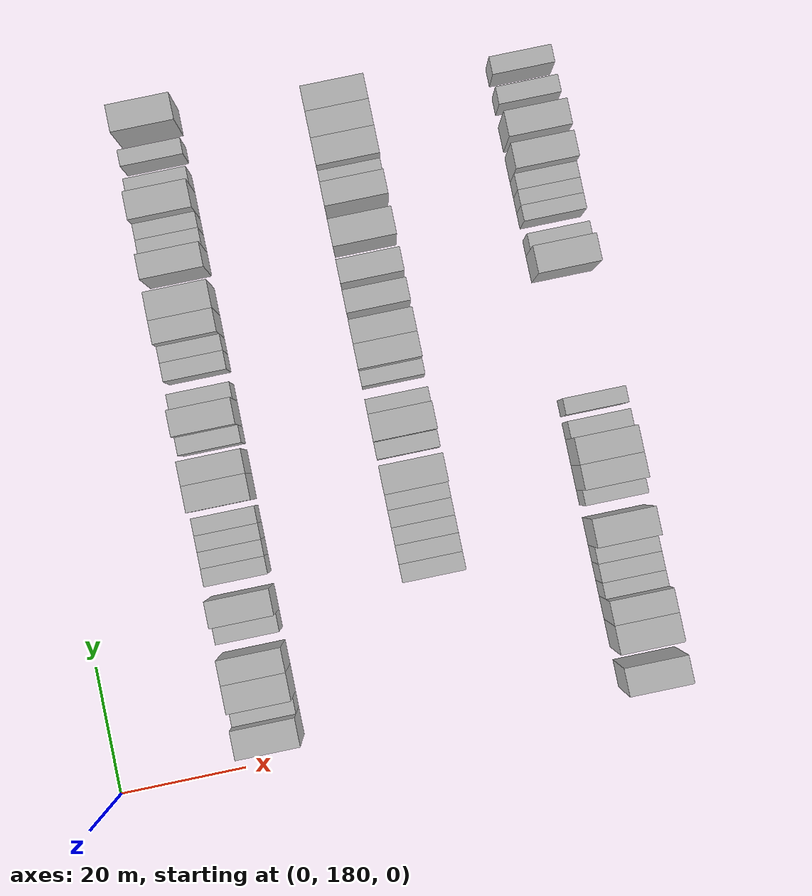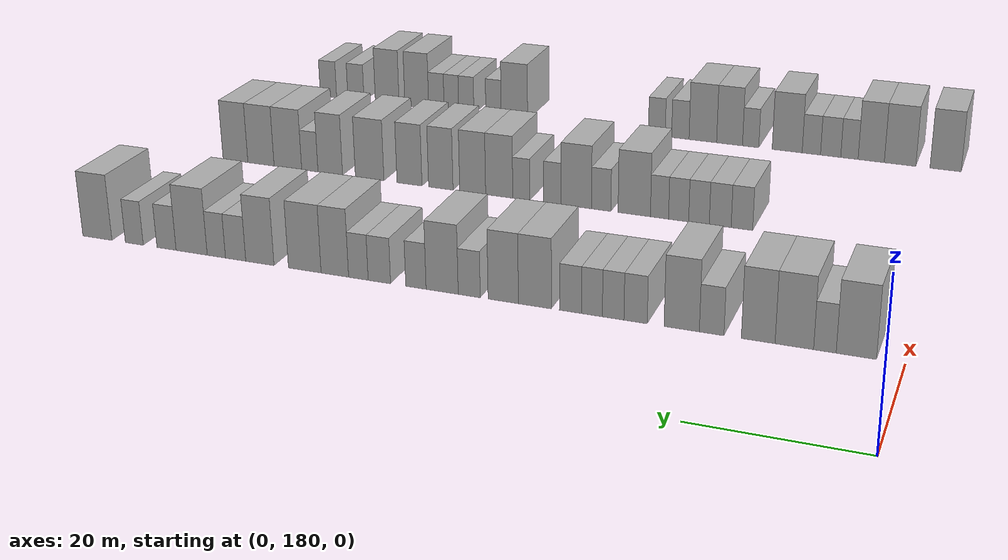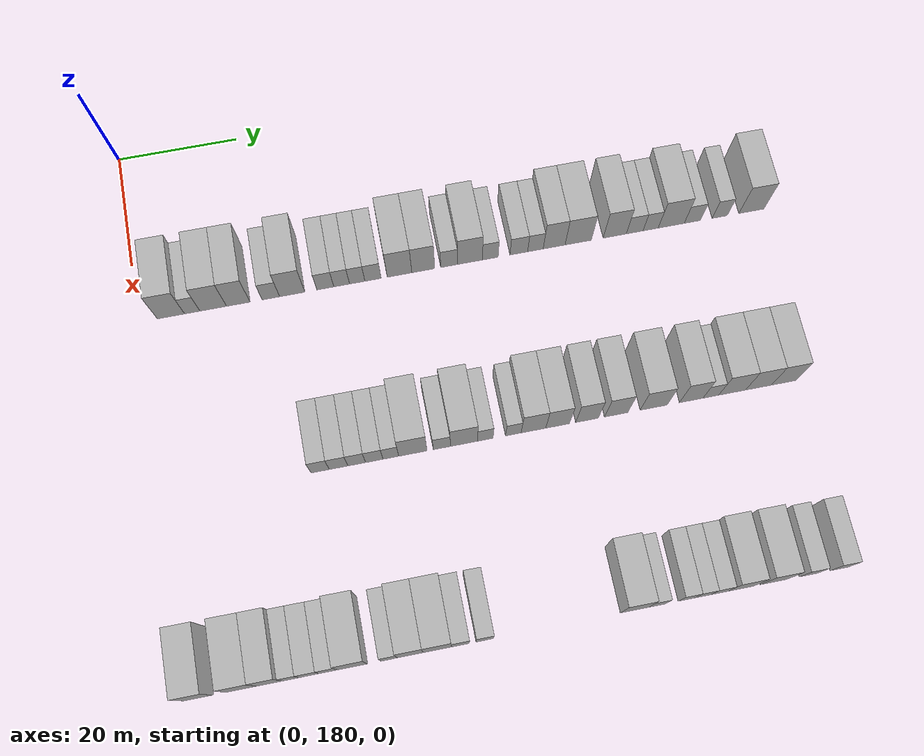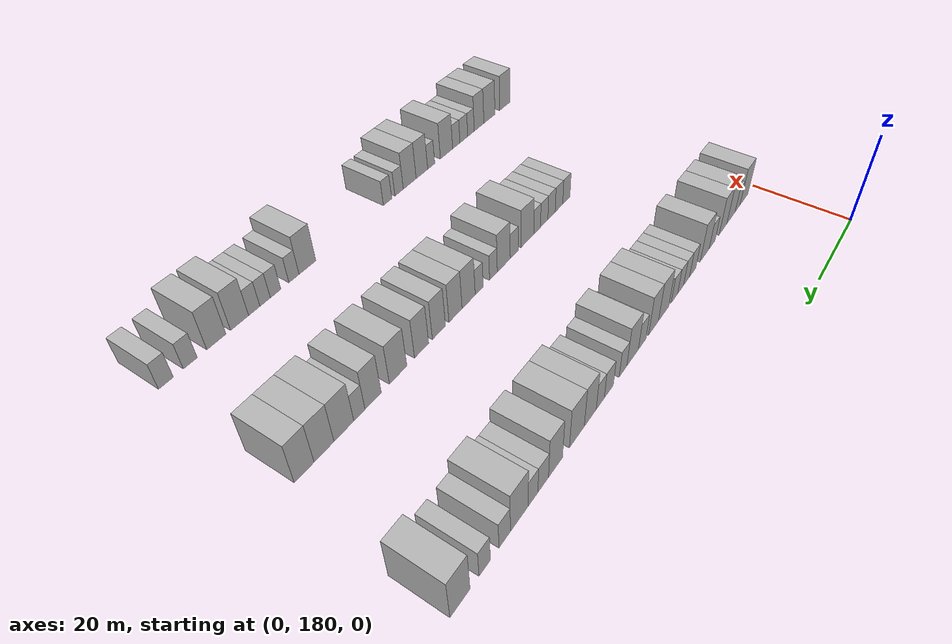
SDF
<sdf version="1.6">
 <world name="default">
  <model name="building_118">
   <static>1</static>
   <pose>25.0000 185.3868 0 0.000000 0.000000 0.000000</pose>
   <link name="link">
    <pose>0 0 4.50 0 0 0</pose>
    <collision name="collision"><geometry><box><size>10.0000 4.4420 9.0000</size></box></geometry></collision>
    <visual name="visual">
     <cast_shadows>0</cast_shadows>
     <geometry><box><size>10.0000 4.4420 9.0000</size></box></geometry>
     <material>
      <script>
       <uri>model://HANNAS_wall/materials/scripts</uri>
       <uri>model://HANNAS_wall/materials/textures</uri>
       <name>vrc/HANNAS_wall</name>
      </script>
     </material>
    </visual>
   </link>
  </model>
  <model name="building_119">
   <static>1</static>
   <pose>25.0000 188.8641 0 0.000000 0.000000 0.000000</pose>
   <link name="link">
    <pose>0 0 3.00 0 0 0</pose>
    <collision name="collision"><geometry><box><size>10.0000 2.5125 6.0000</size></box></geometry></collision>
    <visual name="visual">
     <cast_shadows>0</cast_shadows>
     <geometry><box><size>10.0000 2.5125 6.0000</size></box></geometry>
     <material>
      <script>
       <uri>model://HANNAS_wall/materials/scripts</uri>
       <uri>model://HANNAS_wall/materials/textures</uri>
       <name>vrc/HANNAS_wall</name>
      </script>
     </material>
    </visual>
   </link>
  </model>
  <model name="building_120">
   <static>1</static>
   <pose>25.0000 192.2899 0 0.000000 0.000000 0.000000</pose>
   <link name="link">
    <pose>0 0 4.50 0 0 0</pose>
    <collision name="collision"><geometry><box><size>10.0000 4.3392 9.0000</size></box></geometry></collision>
    <visual name="visual">
     <cast_shadows>0</cast_shadows>
     <geometry><box><size>10.0000 4.3392 9.0000</size></box></geometry>
     <material>
      <script>
       <uri>model://HANNAS_wall/materials/scripts</uri>
       <uri>model://HANNAS_wall/materials/textures</uri>
       <name>vrc/HANNAS_wall</name>
      </script>
     </material>
    </visual>
   </link>
  </model>
  <model name="building_121">
   <static>1</static>
   <pose>25.0000 196.3883 0 0.000000 0.000000 0.000000</pose>
   <link name="link">
    <pose>0 0 4.50 0 0 0</pose>
    <collision name="collision"><geometry><box><size>10.0000 3.8577 9.0000</size></box></geometry></collision>
    <visual name="visual">
     <cast_shadows>0</cast_shadows>
     <geometry><box><size>10.0000 3.8577 9.0000</size></box></geometry>
     <material>
      <script>
       <uri>model://HANNAS_wall/materials/scripts</uri>
       <uri>model://HANNAS_wall/materials/textures</uri>
       <name>vrc/HANNAS_wall</name>
      </script>
     </material>
    </visual>
   </link>
  </model>
  <model name="building_122">
   <static>1</static>
   <pose>25.0000 201.7497 0 0.000000 0.000000 0.000000</pose>
   <link name="link">
    <pose>0 0 3.00 0 0 0</pose>
    <collision name="collision"><geometry><box><size>10.0000 2.8650 6.0000</size></box></geometry></collision>
    <visual name="visual">
     <cast_shadows>0</cast_shadows>
     <geometry><box><size>10.0000 2.8650 6.0000</size></box></geometry>
     <material>
      <script>
       <uri>model://HANNAS_wall/materials/scripts</uri>
       <uri>model://HANNAS_wall/materials/textures</uri>
       <name>vrc/HANNAS_wall</name>
      </script>
     </material>
    </visual>
   </link>
  </model>
  <model name="building_123">
   <static>1</static>
   <pose>25.0000 205.2552 0 0.000000 0.000000 0.000000</pose>
   <link name="link">
    <pose>0 0 4.50 0 0 0</pose>
    <collision name="collision"><geometry><box><size>10.0000 4.1461 9.0000</size></box></geometry></collision>
    <visual name="visual">
     <cast_shadows>0</cast_shadows>
     <geometry><box><size>10.0000 4.1461 9.0000</size></box></geometry>
     <material>
      <script>
       <uri>model://HANNAS_wall/materials/scripts</uri>
       <uri>model://HANNAS_wall/materials/textures</uri>
       <name>vrc/HANNAS_wall</name>
      </script>
     </material>
    </visual>
   </link>
  </model>
  <model name="building_124">
   <static>1</static>
   <pose>25.0000 210.7235 0 0.000000 0.000000 0.000000</pose>
   <link name="link">
    <pose>0 0 3.00 0 0 0</pose>
    <collision name="collision"><geometry><box><size>10.0000 2.7904 6.0000</size></box></geometry></collision>
    <visual name="visual">
     <cast_shadows>0</cast_shadows>
     <geometry><box><size>10.0000 2.7904 6.0000</size></box></geometry>
     <material>
      <script>
       <uri>model://HANNAS_wall/materials/scripts</uri>
       <uri>model://HANNAS_wall/materials/textures</uri>
       <name>vrc/HANNAS_wall</name>
      </script>
     </material>
    </visual>
   </link>
  </model>
  <model name="building_125">
   <static>1</static>
   <pose>25.0000 213.4216 0 0.000000 0.000000 0.000000</pose>
   <link name="link">
    <pose>0 0 3.00 0 0 0</pose>
    <collision name="collision"><geometry><box><size>10.0000 2.6058 6.0000</size></box></geometry></collision>
    <visual name="visual">
     <cast_shadows>0</cast_shadows>
     <geometry><box><size>10.0000 2.6058 6.0000</size></box></geometry>
     <material>
      <script>
       <uri>model://HANNAS_wall/materials/scripts</uri>
       <uri>model://HANNAS_wall/materials/textures</uri>
       <name>vrc/HANNAS_wall</name>
      </script>
     </material>
    </visual>
   </link>
  </model>
  <model name="building_126">
   <static>1</static>
   <pose>25.0000 215.9973 0 0.000000 0.000000 0.000000</pose>
   <link name="link">
    <pose>0 0 3.00 0 0 0</pose>
    <collision name="collision"><geometry><box><size>10.0000 2.5456 6.0000</size></box></geometry></collision>
    <visual name="visual">
     <cast_shadows>0</cast_shadows>
     <geometry><box><size>10.0000 2.5456 6.0000</size></box></geometry>
     <material>
      <script>
       <uri>model://HANNAS_wall/materials/scripts</uri>
       <uri>model://HANNAS_wall/materials/textures</uri>
       <name>vrc/HANNAS_wall</name>
      </script>
     </material>
    </visual>
   </link>
  </model>
  <model name="building_127">
   <static>1</static>
   <pose>25.0000 218.6260 0 0.000000 0.000000 0.000000</pose>
   <link name="link">
    <pose>0 0 3.00 0 0 0</pose>
    <collision name="collision"><geometry><box><size>10.0000 2.7118 6.0000</size></box></geometry></collision>
    <visual name="visual">
     <cast_shadows>0</cast_shadows>
     <geometry><box><size>10.0000 2.7118 6.0000</size></box></geometry>
     <material>
      <script>
       <uri>model://HANNAS_wall/materials/scripts</uri>
       <uri>model://HANNAS_wall/materials/textures</uri>
       <name>vrc/HANNAS_wall</name>
      </script>
     </material>
    </visual>
   </link>
  </model>
  <model name="building_128">
   <static>1</static>
   <pose>25.0000 223.0358 0 0.000000 0.000000 0.000000</pose>
   <link name="link">
    <pose>0 0 4.50 0 0 0</pose>
    <collision name="collision"><geometry><box><size>10.0000 4.1078 9.0000</size></box></geometry></collision>
    <visual name="visual">
     <cast_shadows>0</cast_shadows>
     <geometry><box><size>10.0000 4.1078 9.0000</size></box></geometry>
     <material>
      <script>
       <uri>model://HANNAS_wall/materials/scripts</uri>
       <uri>model://HANNAS_wall/materials/textures</uri>
       <name>vrc/HANNAS_wall</name>
      </script>
     </material>
    </visual>
   </link>
  </model>
  <model name="building_129">
   <static>1</static>
   <pose>25.0000 227.0014 0 0.000000 0.000000 0.000000</pose>
   <link name="link">
    <pose>0 0 4.50 0 0 0</pose>
    <collision name="collision"><geometry><box><size>10.0000 3.8233 9.0000</size></box></geometry></collision>
    <visual name="visual">
     <cast_shadows>0</cast_shadows>
     <geometry><box><size>10.0000 3.8233 9.0000</size></box></geometry>
     <material>
      <script>
       <uri>model://HANNAS_wall/materials/scripts</uri>
       <uri>model://HANNAS_wall/materials/textures</uri>
       <name>vrc/HANNAS_wall</name>
      </script>
     </material>
    </visual>
   </link>
  </model>
  <model name="building_130">
   <static>1</static>
   <pose>25.0000 231.3217 0 0.000000 0.000000 0.000000</pose>
   <link name="link">
    <pose>0 0 3.00 0 0 0</pose>
    <collision name="collision"><geometry><box><size>10.0000 2.8173 6.0000</size></box></geometry></collision>
    <visual name="visual">
     <cast_shadows>0</cast_shadows>
     <geometry><box><size>10.0000 2.8173 6.0000</size></box></geometry>
     <material>
      <script>
       <uri>model://HANNAS_wall/materials/scripts</uri>
       <uri>model://HANNAS_wall/materials/textures</uri>
       <name>vrc/HANNAS_wall</name>
      </script>
     </material>
    </visual>
   </link>
  </model>
  <model name="building_131">
   <static>1</static>
   <pose>25.0000 234.8103 0 0.000000 0.000000 0.000000</pose>
   <link name="link">
    <pose>0 0 4.50 0 0 0</pose>
    <collision name="collision"><geometry><box><size>10.0000 4.1599 9.0000</size></box></geometry></collision>
    <visual name="visual">
     <cast_shadows>0</cast_shadows>
     <geometry><box><size>10.0000 4.1599 9.0000</size></box></geometry>
     <material>
      <script>
       <uri>model://HANNAS_wall/materials/scripts</uri>
       <uri>model://HANNAS_wall/materials/textures</uri>
       <name>vrc/HANNAS_wall</name>
      </script>
     </material>
    </visual>
   </link>
  </model>
  <model name="building_132">
   <static>1</static>
   <pose>25.0000 238.2205 0 0.000000 0.000000 0.000000</pose>
   <link name="link">
    <pose>0 0 3.00 0 0 0</pose>
    <collision name="collision"><geometry><box><size>10.0000 2.6606 6.0000</size></box></geometry></collision>
    <visual name="visual">
     <cast_shadows>0</cast_shadows>
     <geometry><box><size>10.0000 2.6606 6.0000</size></box></geometry>
     <material>
      <script>
       <uri>model://HANNAS_wall/materials/scripts</uri>
       <uri>model://HANNAS_wall/materials/textures</uri>
       <name>vrc/HANNAS_wall</name>
      </script>
     </material>
    </visual>
   </link>
  </model>
  <model name="building_133">
   <static>1</static>
   <pose>25.0000 243.0415 0 0.000000 0.000000 0.000000</pose>
   <link name="link">
    <pose>0 0 3.00 0 0 0</pose>
    <collision name="collision"><geometry><box><size>10.0000 2.9813 6.0000</size></box></geometry></collision>
    <visual name="visual">
     <cast_shadows>0</cast_shadows>
     <geometry><box><size>10.0000 2.9813 6.0000</size></box></geometry>
     <material>
      <script>
       <uri>model://HANNAS_wall/materials/scripts</uri>
       <uri>model://HANNAS_wall/materials/textures</uri>
       <name>vrc/HANNAS_wall</name>
      </script>
     </material>
    </visual>
   </link>
  </model>
  <model name="building_134">
   <static>1</static>
   <pose>25.0000 245.8419 0 0.000000 0.000000 0.000000</pose>
   <link name="link">
    <pose>0 0 3.00 0 0 0</pose>
    <collision name="collision"><geometry><box><size>10.0000 2.6196 6.0000</size></box></geometry></collision>
    <visual name="visual">
     <cast_shadows>0</cast_shadows>
     <geometry><box><size>10.0000 2.6196 6.0000</size></box></geometry>
     <material>
      <script>
       <uri>model://HANNAS_wall/materials/scripts</uri>
       <uri>model://HANNAS_wall/materials/textures</uri>
       <name>vrc/HANNAS_wall</name>
      </script>
     </material>
    </visual>
   </link>
  </model>
  <model name="building_135">
   <static>1</static>
   <pose>25.0000 249.0126 0 0.000000 0.000000 0.000000</pose>
   <link name="link">
    <pose>0 0 4.50 0 0 0</pose>
    <collision name="collision"><geometry><box><size>10.0000 3.7219 9.0000</size></box></geometry></collision>
    <visual name="visual">
     <cast_shadows>0</cast_shadows>
     <geometry><box><size>10.0000 3.7219 9.0000</size></box></geometry>
     <material>
      <script>
       <uri>model://HANNAS_wall/materials/scripts</uri>
       <uri>model://HANNAS_wall/materials/textures</uri>
       <name>vrc/HANNAS_wall</name>
      </script>
     </material>
    </visual>
   </link>
  </model>
  <model name="building_136">
   <static>1</static>
   <pose>25.0000 253.1084 0 0.000000 0.000000 0.000000</pose>
   <link name="link">
    <pose>0 0 4.50 0 0 0</pose>
    <collision name="collision"><geometry><box><size>10.0000 4.4697 9.0000</size></box></geometry></collision>
    <visual name="visual">
     <cast_shadows>0</cast_shadows>
     <geometry><box><size>10.0000 4.4697 9.0000</size></box></geometry>
     <material>
      <script>
       <uri>model://HANNAS_wall/materials/scripts</uri>
       <uri>model://HANNAS_wall/materials/textures</uri>
       <name>vrc/HANNAS_wall</name>
      </script>
     </material>
    </visual>
   </link>
  </model>
  <model name="building_137">
   <static>1</static>
   <pose>25.0000 259.3169 0 0.000000 0.000000 0.000000</pose>
   <link name="link">
    <pose>0 0 4.50 0 0 0</pose>
    <collision name="collision"><geometry><box><size>10.0000 3.9473 9.0000</size></box></geometry></collision>
    <visual name="visual">
     <cast_shadows>0</cast_shadows>
     <geometry><box><size>10.0000 3.9473 9.0000</size></box></geometry>
     <material>
      <script>
       <uri>model://HANNAS_wall/materials/scripts</uri>
       <uri>model://HANNAS_wall/materials/textures</uri>
       <name>vrc/HANNAS_wall</name>
      </script>
     </material>
    </visual>
   </link>
  </model>
  <model name="building_138">
   <static>1</static>
   <pose>25.0000 262.7218 0 0.000000 0.000000 0.000000</pose>
   <link name="link">
    <pose>0 0 3.00 0 0 0</pose>
    <collision name="collision"><geometry><box><size>10.0000 2.8626 6.0000</size></box></geometry></collision>
    <visual name="visual">
     <cast_shadows>0</cast_shadows>
     <geometry><box><size>10.0000 2.8626 6.0000</size></box></geometry>
     <material>
      <script>
       <uri>model://HANNAS_wall/materials/scripts</uri>
       <uri>model://HANNAS_wall/materials/textures</uri>
       <name>vrc/HANNAS_wall</name>
      </script>
     </material>
    </visual>
   </link>
  </model>
  <model name="building_139">
   <static>1</static>
   <pose>25.0000 265.4509 0 0.000000 0.000000 0.000000</pose>
   <link name="link">
    <pose>0 0 3.00 0 0 0</pose>
    <collision name="collision"><geometry><box><size>10.0000 2.5955 6.0000</size></box></geometry></collision>
    <visual name="visual">
     <cast_shadows>0</cast_shadows>
     <geometry><box><size>10.0000 2.5955 6.0000</size></box></geometry>
     <material>
      <script>
       <uri>model://HANNAS_wall/materials/scripts</uri>
       <uri>model://HANNAS_wall/materials/textures</uri>
       <name>vrc/HANNAS_wall</name>
      </script>
     </material>
    </visual>
   </link>
  </model>
  <model name="building_140">
   <static>1</static>
   <pose>25.0000 268.9870 0 0.000000 0.000000 0.000000</pose>
   <link name="link">
    <pose>0 0 4.50 0 0 0</pose>
    <collision name="collision"><geometry><box><size>10.0000 4.4767 9.0000</size></box></geometry></collision>
    <visual name="visual">
     <cast_shadows>0</cast_shadows>
     <geometry><box><size>10.0000 4.4767 9.0000</size></box></geometry>
     <material>
      <script>
       <uri>model://HANNAS_wall/materials/scripts</uri>
       <uri>model://HANNAS_wall/materials/textures</uri>
       <name>vrc/HANNAS_wall</name>
      </script>
     </material>
    </visual>
   </link>
  </model>
  <model name="building_141">
   <static>1</static>
   <pose>25.0000 272.6194 0 0.000000 0.000000 0.000000</pose>
   <link name="link">
    <pose>0 0 3.00 0 0 0</pose>
    <collision name="collision"><geometry><box><size>10.0000 2.7882 6.0000</size></box></geometry></collision>
    <visual name="visual">
     <cast_shadows>0</cast_shadows>
     <geometry><box><size>10.0000 2.7882 6.0000</size></box></geometry>
     <material>
      <script>
       <uri>model://HANNAS_wall/materials/scripts</uri>
       <uri>model://HANNAS_wall/materials/textures</uri>
       <name>vrc/HANNAS_wall</name>
      </script>
     </material>
    </visual>
   </link>
  </model>
  <model name="building_142">
   <static>1</static>
   <pose>25.0000 277.3292 0 0.000000 0.000000 0.000000</pose>
   <link name="link">
    <pose>0 0 3.00 0 0 0</pose>
    <collision name="collision"><geometry><box><size>10.0000 2.6312 6.0000</size></box></geometry></collision>
    <visual name="visual">
     <cast_shadows>0</cast_shadows>
     <geometry><box><size>10.0000 2.6312 6.0000</size></box></geometry>
     <material>
      <script>
       <uri>model://HANNAS_wall/materials/scripts</uri>
       <uri>model://HANNAS_wall/materials/textures</uri>
       <name>vrc/HANNAS_wall</name>
      </script>
     </material>
    </visual>
   </link>
  </model>
  <model name="building_143">
   <static>1</static>
   <pose>25.0000 282.8171 0 0.000000 0.000000 0.000000</pose>
   <link name="link">
    <pose>0 0 4.50 0 0 0</pose>
    <collision name="collision"><geometry><box><size>10.0000 4.3447 9.0000</size></box></geometry></collision>
    <visual name="visual">
     <cast_shadows>0</cast_shadows>
     <geometry><box><size>10.0000 4.3447 9.0000</size></box></geometry>
     <material>
      <script>
       <uri>model://HANNAS_wall/materials/scripts</uri>
       <uri>model://HANNAS_wall/materials/textures</uri>
       <name>vrc/HANNAS_wall</name>
      </script>
     </material>
    </visual>
   </link>
  </model>
  <model name="building_252">
   <static>1</static>
   <pose>55.0000 205.1784 0 0.000000 0.000000 0.000000</pose>
   <link name="link">
    <pose>0 0 3.00 0 0 0</pose>
    <collision name="collision"><geometry><box><size>10.0000 2.8641 6.0000</size></box></geometry></collision>
    <visual name="visual">
     <cast_shadows>0</cast_shadows>
     <geometry><box><size>10.0000 2.8641 6.0000</size></box></geometry>
     <material>
      <script>
       <uri>model://HANNAS_wall/materials/scripts</uri>
       <uri>model://HANNAS_wall/materials/textures</uri>
       <name>vrc/HANNAS_wall</name>
      </script>
     </material>
    </visual>
   </link>
  </model>
  <model name="building_253">
   <static>1</static>
   <pose>55.0000 208.0763 0 0.000000 0.000000 0.000000</pose>
   <link name="link">
    <pose>0 0 3.00 0 0 0</pose>
    <collision name="collision"><geometry><box><size>10.0000 2.9316 6.0000</size></box></geometry></collision>
    <visual name="visual">
     <cast_shadows>0</cast_shadows>
     <geometry><box><size>10.0000 2.9316 6.0000</size></box></geometry>
     <material>
      <script>
       <uri>model://HANNAS_wall/materials/scripts</uri>
       <uri>model://HANNAS_wall/materials/textures</uri>
       <name>vrc/HANNAS_wall</name>
      </script>
     </material>
    </visual>
   </link>
  </model>
  <model name="building_254">
   <static>1</static>
   <pose>55.0000 210.9330 0 0.000000 0.000000 0.000000</pose>
   <link name="link">
    <pose>0 0 3.00 0 0 0</pose>
    <collision name="collision"><geometry><box><size>10.0000 2.7818 6.0000</size></box></geometry></collision>
    <visual name="visual">
     <cast_shadows>0</cast_shadows>
     <geometry><box><size>10.0000 2.7818 6.0000</size></box></geometry>
     <material>
      <script>
       <uri>model://HANNAS_wall/materials/scripts</uri>
       <uri>model://HANNAS_wall/materials/textures</uri>
       <name>vrc/HANNAS_wall</name>
      </script>
     </material>
    </visual>
   </link>
  </model>
  <model name="building_255">
   <static>1</static>
   <pose>55.0000 213.6945 0 0.000000 0.000000 0.000000</pose>
   <link name="link">
    <pose>0 0 3.00 0 0 0</pose>
    <collision name="collision"><geometry><box><size>10.0000 2.7412 6.0000</size></box></geometry></collision>
    <visual name="visual">
     <cast_shadows>0</cast_shadows>
     <geometry><box><size>10.0000 2.7412 6.0000</size></box></geometry>
     <material>
      <script>
       <uri>model://HANNAS_wall/materials/scripts</uri>
       <uri>model://HANNAS_wall/materials/textures</uri>
       <name>vrc/HANNAS_wall</name>
      </script>
     </material>
    </visual>
   </link>
  </model>
  <model name="building_256">
   <static>1</static>
   <pose>55.0000 216.3075 0 0.000000 0.000000 0.000000</pose>
   <link name="link">
    <pose>0 0 3.00 0 0 0</pose>
    <collision name="collision"><geometry><box><size>10.0000 2.4850 6.0000</size></box></geometry></collision>
    <visual name="visual">
     <cast_shadows>0</cast_shadows>
     <geometry><box><size>10.0000 2.4850 6.0000</size></box></geometry>
     <material>
      <script>
       <uri>model://HANNAS_wall/materials/scripts</uri>
       <uri>model://HANNAS_wall/materials/textures</uri>
       <name>vrc/HANNAS_wall</name>
      </script>
     </material>
    </visual>
   </link>
  </model>
  <model name="building_257">
   <static>1</static>
   <pose>55.0000 219.7925 0 0.000000 0.000000 0.000000</pose>
   <link name="link">
    <pose>0 0 4.50 0 0 0</pose>
    <collision name="collision"><geometry><box><size>10.0000 4.4850 9.0000</size></box></geometry></collision>
    <visual name="visual">
     <cast_shadows>0</cast_shadows>
     <geometry><box><size>10.0000 4.4850 9.0000</size></box></geometry>
     <material>
      <script>
       <uri>model://HANNAS_wall/materials/scripts</uri>
       <uri>model://HANNAS_wall/materials/textures</uri>
       <name>vrc/HANNAS_wall</name>
      </script>
     </material>
    </visual>
   </link>
  </model>
  <model name="building_258">
   <static>1</static>
   <pose>55.0000 224.3978 0 0.000000 0.000000 0.000000</pose>
   <link name="link">
    <pose>0 0 3.00 0 0 0</pose>
    <collision name="collision"><geometry><box><size>10.0000 2.7257 6.0000</size></box></geometry></collision>
    <visual name="visual">
     <cast_shadows>0</cast_shadows>
     <geometry><box><size>10.0000 2.7257 6.0000</size></box></geometry>
     <material>
      <script>
       <uri>model://HANNAS_wall/materials/scripts</uri>
       <uri>model://HANNAS_wall/materials/textures</uri>
       <name>vrc/HANNAS_wall</name>
      </script>
     </material>
    </visual>
   </link>
  </model>
  <model name="building_259">
   <static>1</static>
   <pose>55.0000 227.9135 0 0.000000 0.000000 0.000000</pose>
   <link name="link">
    <pose>0 0 4.50 0 0 0</pose>
    <collision name="collision"><geometry><box><size>10.0000 4.3057 9.0000</size></box></geometry></collision>
    <visual name="visual">
     <cast_shadows>0</cast_shadows>
     <geometry><box><size>10.0000 4.3057 9.0000</size></box></geometry>
     <material>
      <script>
       <uri>model://HANNAS_wall/materials/scripts</uri>
       <uri>model://HANNAS_wall/materials/textures</uri>
       <name>vrc/HANNAS_wall</name>
      </script>
     </material>
    </visual>
   </link>
  </model>
  <model name="building_260">
   <static>1</static>
   <pose>55.0000 231.3106 0 0.000000 0.000000 0.000000</pose>
   <link name="link">
    <pose>0 0 3.00 0 0 0</pose>
    <collision name="collision"><geometry><box><size>10.0000 2.4886 6.0000</size></box></geometry></collision>
    <visual name="visual">
     <cast_shadows>0</cast_shadows>
     <geometry><box><size>10.0000 2.4886 6.0000</size></box></geometry>
     <material>
      <script>
       <uri>model://HANNAS_wall/materials/scripts</uri>
       <uri>model://HANNAS_wall/materials/textures</uri>
       <name>vrc/HANNAS_wall</name>
      </script>
     </material>
    </visual>
   </link>
  </model>
  <model name="building_261">
   <static>1</static>
   <pose>55.0000 235.7949 0 0.000000 0.000000 0.000000</pose>
   <link name="link">
    <pose>0 0 3.00 0 0 0</pose>
    <collision name="collision"><geometry><box><size>10.0000 2.4800 6.0000</size></box></geometry></collision>
    <visual name="visual">
     <cast_shadows>0</cast_shadows>
     <geometry><box><size>10.0000 2.4800 6.0000</size></box></geometry>
     <material>
      <script>
       <uri>model://HANNAS_wall/materials/scripts</uri>
       <uri>model://HANNAS_wall/materials/textures</uri>
       <name>vrc/HANNAS_wall</name>
      </script>
     </material>
    </visual>
   </link>
  </model>
  <model name="building_262">
   <static>1</static>
   <pose>55.0000 239.0174 0 0.000000 0.000000 0.000000</pose>
   <link name="link">
    <pose>0 0 4.50 0 0 0</pose>
    <collision name="collision"><geometry><box><size>10.0000 3.9650 9.0000</size></box></geometry></collision>
    <visual name="visual">
     <cast_shadows>0</cast_shadows>
     <geometry><box><size>10.0000 3.9650 9.0000</size></box></geometry>
     <material>
      <script>
       <uri>model://HANNAS_wall/materials/scripts</uri>
       <uri>model://HANNAS_wall/materials/textures</uri>
       <name>vrc/HANNAS_wall</name>
      </script>
     </material>
    </visual>
   </link>
  </model>
  <model name="building_263">
   <static>1</static>
   <pose>55.0000 242.9119 0 0.000000 0.000000 0.000000</pose>
   <link name="link">
    <pose>0 0 4.50 0 0 0</pose>
    <collision name="collision"><geometry><box><size>10.0000 3.8240 9.0000</size></box></geometry></collision>
    <visual name="visual">
     <cast_shadows>0</cast_shadows>
     <geometry><box><size>10.0000 3.8240 9.0000</size></box></geometry>
     <material>
      <script>
       <uri>model://HANNAS_wall/materials/scripts</uri>
       <uri>model://HANNAS_wall/materials/textures</uri>
       <name>vrc/HANNAS_wall</name>
      </script>
     </material>
    </visual>
   </link>
  </model>
  <model name="building_264">
   <static>1</static>
   <pose>55.0000 247.6518 0 0.000000 0.000000 0.000000</pose>
   <link name="link">
    <pose>0 0 4.50 0 0 0</pose>
    <collision name="collision"><geometry><box><size>10.0000 3.6558 9.0000</size></box></geometry></collision>
    <visual name="visual">
     <cast_shadows>0</cast_shadows>
     <geometry><box><size>10.0000 3.6558 9.0000</size></box></geometry>
     <material>
      <script>
       <uri>model://HANNAS_wall/materials/scripts</uri>
       <uri>model://HANNAS_wall/materials/textures</uri>
       <name>vrc/HANNAS_wall</name>
      </script>
     </material>
    </visual>
   </link>
  </model>
  <model name="building_265">
   <static>1</static>
   <pose>55.0000 252.3745 0 0.000000 0.000000 0.000000</pose>
   <link name="link">
    <pose>0 0 4.50 0 0 0</pose>
    <collision name="collision"><geometry><box><size>10.0000 3.7895 9.0000</size></box></geometry></collision>
    <visual name="visual">
     <cast_shadows>0</cast_shadows>
     <geometry><box><size>10.0000 3.7895 9.0000</size></box></geometry>
     <material>
      <script>
       <uri>model://HANNAS_wall/materials/scripts</uri>
       <uri>model://HANNAS_wall/materials/textures</uri>
       <name>vrc/HANNAS_wall</name>
      </script>
     </material>
    </visual>
   </link>
  </model>
  <model name="building_266">
   <static>1</static>
   <pose>55.0000 258.4699 0 0.000000 0.000000 0.000000</pose>
   <link name="link">
    <pose>0 0 4.50 0 0 0</pose>
    <collision name="collision"><geometry><box><size>10.0000 4.4014 9.0000</size></box></geometry></collision>
    <visual name="visual">
     <cast_shadows>0</cast_shadows>
     <geometry><box><size>10.0000 4.4014 9.0000</size></box></geometry>
     <material>
      <script>
       <uri>model://HANNAS_wall/materials/scripts</uri>
       <uri>model://HANNAS_wall/materials/textures</uri>
       <name>vrc/HANNAS_wall</name>
      </script>
     </material>
    </visual>
   </link>
  </model>
  <model name="building_267">
   <static>1</static>
   <pose>55.0000 264.5985 0 0.000000 0.000000 0.000000</pose>
   <link name="link">
    <pose>0 0 4.50 0 0 0</pose>
    <collision name="collision"><geometry><box><size>10.0000 3.8558 9.0000</size></box></geometry></collision>
    <visual name="visual">
     <cast_shadows>0</cast_shadows>
     <geometry><box><size>10.0000 3.8558 9.0000</size></box></geometry>
     <material>
      <script>
       <uri>model://HANNAS_wall/materials/scripts</uri>
       <uri>model://HANNAS_wall/materials/textures</uri>
       <name>vrc/HANNAS_wall</name>
      </script>
     </material>
    </visual>
   </link>
  </model>
  <model name="building_268">
   <static>1</static>
   <pose>55.0000 267.8153 0 0.000000 0.000000 0.000000</pose>
   <link name="link">
    <pose>0 0 3.00 0 0 0</pose>
    <collision name="collision"><geometry><box><size>10.0000 2.5777 6.0000</size></box></geometry></collision>
    <visual name="visual">
     <cast_shadows>0</cast_shadows>
     <geometry><box><size>10.0000 2.5777 6.0000</size></box></geometry>
     <material>
      <script>
       <uri>model://HANNAS_wall/materials/scripts</uri>
       <uri>model://HANNAS_wall/materials/textures</uri>
       <name>vrc/HANNAS_wall</name>
      </script>
     </material>
    </visual>
   </link>
  </model>
  <model name="building_269">
   <static>1</static>
   <pose>55.0000 271.3072 0 0.000000 0.000000 0.000000</pose>
   <link name="link">
    <pose>0 0 4.50 0 0 0</pose>
    <collision name="collision"><geometry><box><size>10.0000 4.4061 9.0000</size></box></geometry></collision>
    <visual name="visual">
     <cast_shadows>0</cast_shadows>
     <geometry><box><size>10.0000 4.4061 9.0000</size></box></geometry>
     <material>
      <script>
       <uri>model://HANNAS_wall/materials/scripts</uri>
       <uri>model://HANNAS_wall/materials/textures</uri>
       <name>vrc/HANNAS_wall</name>
      </script>
     </material>
    </visual>
   </link>
  </model>
  <model name="building_270">
   <static>1</static>
   <pose>55.0000 275.6243 0 0.000000 0.000000 0.000000</pose>
   <link name="link">
    <pose>0 0 4.50 0 0 0</pose>
    <collision name="collision"><geometry><box><size>10.0000 4.2281 9.0000</size></box></geometry></collision>
    <visual name="visual">
     <cast_shadows>0</cast_shadows>
     <geometry><box><size>10.0000 4.2281 9.0000</size></box></geometry>
     <material>
      <script>
       <uri>model://HANNAS_wall/materials/scripts</uri>
       <uri>model://HANNAS_wall/materials/textures</uri>
       <name>vrc/HANNAS_wall</name>
      </script>
     </material>
    </visual>
   </link>
  </model>
  <model name="building_271">
   <static>1</static>
   <pose>55.0000 279.7569 0 0.000000 0.000000 0.000000</pose>
   <link name="link">
    <pose>0 0 4.50 0 0 0</pose>
    <collision name="collision"><geometry><box><size>10.0000 4.0370 9.0000</size></box></geometry></collision>
    <visual name="visual">
     <cast_shadows>0</cast_shadows>
     <geometry><box><size>10.0000 4.0370 9.0000</size></box></geometry>
     <material>
      <script>
       <uri>model://HANNAS_wall/materials/scripts</uri>
       <uri>model://HANNAS_wall/materials/textures</uri>
       <name>vrc/HANNAS_wall</name>
      </script>
     </material>
    </visual>
   </link>
  </model>
  <model name="building_386">
   <static>1</static>
   <pose>85.0000 182.5212 0 0.000000 0.000000 0.000000</pose>
   <link name="link">
    <pose>0 0 4.50 0 0 0</pose>
    <collision name="collision"><geometry><box><size>10.0000 4.3675 9.0000</size></box></geometry></collision>
    <visual name="visual">
     <cast_shadows>0</cast_shadows>
     <geometry><box><size>10.0000 4.3675 9.0000</size></box></geometry>
     <material>
      <script>
       <uri>model://HANNAS_wall/materials/scripts</uri>
       <uri>model://HANNAS_wall/materials/textures</uri>
       <name>vrc/HANNAS_wall</name>
      </script>
     </material>
    </visual>
   </link>
  </model>
  <model name="building_387">
   <static>1</static>
   <pose>85.0000 188.9431 0 0.000000 0.000000 0.000000</pose>
   <link name="link">
    <pose>0 0 4.50 0 0 0</pose>
    <collision name="collision"><geometry><box><size>10.0000 4.4764 9.0000</size></box></geometry></collision>
    <visual name="visual">
     <cast_shadows>0</cast_shadows>
     <geometry><box><size>10.0000 4.4764 9.0000</size></box></geometry>
     <material>
      <script>
       <uri>model://HANNAS_wall/materials/scripts</uri>
       <uri>model://HANNAS_wall/materials/textures</uri>
       <name>vrc/HANNAS_wall</name>
      </script>
     </material>
    </visual>
   </link>
  </model>
  <model name="building_388">
   <static>1</static>
   <pose>85.0000 193.0631 0 0.000000 0.000000 0.000000</pose>
   <link name="link">
    <pose>0 0 4.50 0 0 0</pose>
    <collision name="collision"><geometry><box><size>10.0000 3.7636 9.0000</size></box></geometry></collision>
    <visual name="visual">
     <cast_shadows>0</cast_shadows>
     <geometry><box><size>10.0000 3.7636 9.0000</size></box></geometry>
     <material>
      <script>
       <uri>model://HANNAS_wall/materials/scripts</uri>
       <uri>model://HANNAS_wall/materials/textures</uri>
       <name>vrc/HANNAS_wall</name>
      </script>
     </material>
    </visual>
   </link>
  </model>
  <model name="building_389">
   <static>1</static>
   <pose>85.0000 196.2019 0 0.000000 0.000000 0.000000</pose>
   <link name="link">
    <pose>0 0 3.00 0 0 0</pose>
    <collision name="collision"><geometry><box><size>10.0000 2.5138 6.0000</size></box></geometry></collision>
    <visual name="visual">
     <cast_shadows>0</cast_shadows>
     <geometry><box><size>10.0000 2.5138 6.0000</size></box></geometry>
     <material>
      <script>
       <uri>model://HANNAS_wall/materials/scripts</uri>
       <uri>model://HANNAS_wall/materials/textures</uri>
       <name>vrc/HANNAS_wall</name>
      </script>
     </material>
    </visual>
   </link>
  </model>
  <model name="building_390">
   <static>1</static>
   <pose>85.0000 198.9373 0 0.000000 0.000000 0.000000</pose>
   <link name="link">
    <pose>0 0 3.00 0 0 0</pose>
    <collision name="collision"><geometry><box><size>10.0000 2.9570 6.0000</size></box></geometry></collision>
    <visual name="visual">
     <cast_shadows>0</cast_shadows>
     <geometry><box><size>10.0000 2.9570 6.0000</size></box></geometry>
     <material>
      <script>
       <uri>model://HANNAS_wall/materials/scripts</uri>
       <uri>model://HANNAS_wall/materials/textures</uri>
       <name>vrc/HANNAS_wall</name>
      </script>
     </material>
    </visual>
   </link>
  </model>
  <model name="building_391">
   <static>1</static>
   <pose>85.0000 201.7619 0 0.000000 0.000000 0.000000</pose>
   <link name="link">
    <pose>0 0 3.00 0 0 0</pose>
    <collision name="collision"><geometry><box><size>10.0000 2.6924 6.0000</size></box></geometry></collision>
    <visual name="visual">
     <cast_shadows>0</cast_shadows>
     <geometry><box><size>10.0000 2.6924 6.0000</size></box></geometry>
     <material>
      <script>
       <uri>model://HANNAS_wall/materials/scripts</uri>
       <uri>model://HANNAS_wall/materials/textures</uri>
       <name>vrc/HANNAS_wall</name>
      </script>
     </material>
    </visual>
   </link>
  </model>
  <model name="building_392">
   <static>1</static>
   <pose>85.0000 205.3327 0 0.000000 0.000000 0.000000</pose>
   <link name="link">
    <pose>0 0 4.50 0 0 0</pose>
    <collision name="collision"><geometry><box><size>10.0000 4.4492 9.0000</size></box></geometry></collision>
    <visual name="visual">
     <cast_shadows>0</cast_shadows>
     <geometry><box><size>10.0000 4.4492 9.0000</size></box></geometry>
     <material>
      <script>
       <uri>model://HANNAS_wall/materials/scripts</uri>
       <uri>model://HANNAS_wall/materials/textures</uri>
       <name>vrc/HANNAS_wall</name>
      </script>
     </material>
    </visual>
   </link>
  </model>
  <model name="building_393">
   <static>1</static>
   <pose>85.0000 210.7830 0 0.000000 0.000000 0.000000</pose>
   <link name="link">
    <pose>0 0 3.00 0 0 0</pose>
    <collision name="collision"><geometry><box><size>10.0000 2.4512 6.0000</size></box></geometry></collision>
    <visual name="visual">
     <cast_shadows>0</cast_shadows>
     <geometry><box><size>10.0000 2.4512 6.0000</size></box></geometry>
     <material>
      <script>
       <uri>model://HANNAS_wall/materials/scripts</uri>
       <uri>model://HANNAS_wall/materials/textures</uri>
       <name>vrc/HANNAS_wall</name>
      </script>
     </material>
    </visual>
   </link>
  </model>
  <model name="building_394">
   <static>1</static>
   <pose>85.0000 213.9708 0 0.000000 0.000000 0.000000</pose>
   <link name="link">
    <pose>0 0 4.50 0 0 0</pose>
    <collision name="collision"><geometry><box><size>10.0000 3.9245 9.0000</size></box></geometry></collision>
    <visual name="visual">
     <cast_shadows>0</cast_shadows>
     <geometry><box><size>10.0000 3.9245 9.0000</size></box></geometry>
     <material>
      <script>
       <uri>model://HANNAS_wall/materials/scripts</uri>
       <uri>model://HANNAS_wall/materials/textures</uri>
       <name>vrc/HANNAS_wall</name>
      </script>
     </material>
    </visual>
   </link>
  </model>
  <model name="building_395">
   <static>1</static>
   <pose>85.0000 218.0449 0 0.000000 0.000000 0.000000</pose>
   <link name="link">
    <pose>0 0 4.50 0 0 0</pose>
    <collision name="collision"><geometry><box><size>10.0000 4.2237 9.0000</size></box></geometry></collision>
    <visual name="visual">
     <cast_shadows>0</cast_shadows>
     <geometry><box><size>10.0000 4.2237 9.0000</size></box></geometry>
     <material>
      <script>
       <uri>model://HANNAS_wall/materials/scripts</uri>
       <uri>model://HANNAS_wall/materials/textures</uri>
       <name>vrc/HANNAS_wall</name>
      </script>
     </material>
    </visual>
   </link>
  </model>
  <model name="building_396">
   <static>1</static>
   <pose>85.0000 221.5024 0 0.000000 0.000000 0.000000</pose>
   <link name="link">
    <pose>0 0 3.00 0 0 0</pose>
    <collision name="collision"><geometry><box><size>10.0000 2.6913 6.0000</size></box></geometry></collision>
    <visual name="visual">
     <cast_shadows>0</cast_shadows>
     <geometry><box><size>10.0000 2.6913 6.0000</size></box></geometry>
     <material>
      <script>
       <uri>model://HANNAS_wall/materials/scripts</uri>
       <uri>model://HANNAS_wall/materials/textures</uri>
       <name>vrc/HANNAS_wall</name>
      </script>
     </material>
    </visual>
   </link>
  </model>
  <model name="building_397">
   <static>1</static>
   <pose>85.0000 225.1570 0 0.000000 0.000000 0.000000</pose>
   <link name="link">
    <pose>0 0 3.00 0 0 0</pose>
    <collision name="collision"><geometry><box><size>10.0000 2.6181 6.0000</size></box></geometry></collision>
    <visual name="visual">
     <cast_shadows>0</cast_shadows>
     <geometry><box><size>10.0000 2.6181 6.0000</size></box></geometry>
     <material>
      <script>
       <uri>model://HANNAS_wall/materials/scripts</uri>
       <uri>model://HANNAS_wall/materials/textures</uri>
       <name>vrc/HANNAS_wall</name>
      </script>
     </material>
    </visual>
   </link>
  </model>
  <model name="building_398">
   <static>1</static>
   <pose>85.0000 248.0092 0 0.000000 0.000000 0.000000</pose>
   <link name="link">
    <pose>0 0 4.50 0 0 0</pose>
    <collision name="collision"><geometry><box><size>10.0000 4.3621 9.0000</size></box></geometry></collision>
    <visual name="visual">
     <cast_shadows>0</cast_shadows>
     <geometry><box><size>10.0000 4.3621 9.0000</size></box></geometry>
     <material>
      <script>
       <uri>model://HANNAS_wall/materials/scripts</uri>
       <uri>model://HANNAS_wall/materials/textures</uri>
       <name>vrc/HANNAS_wall</name>
      </script>
     </material>
    </visual>
   </link>
  </model>
  <model name="building_399">
   <static>1</static>
   <pose>85.0000 251.4640 0 0.000000 0.000000 0.000000</pose>
   <link name="link">
    <pose>0 0 3.00 0 0 0</pose>
    <collision name="collision"><geometry><box><size>10.0000 2.5476 6.0000</size></box></geometry></collision>
    <visual name="visual">
     <cast_shadows>0</cast_shadows>
     <geometry><box><size>10.0000 2.5476 6.0000</size></box></geometry>
     <material>
      <script>
       <uri>model://HANNAS_wall/materials/scripts</uri>
       <uri>model://HANNAS_wall/materials/textures</uri>
       <name>vrc/HANNAS_wall</name>
      </script>
     </material>
    </visual>
   </link>
  </model>
  <model name="building_400">
   <static>1</static>
   <pose>85.0000 256.0124 0 0.000000 0.000000 0.000000</pose>
   <link name="link">
    <pose>0 0 3.00 0 0 0</pose>
    <collision name="collision"><geometry><box><size>10.0000 2.5492 6.0000</size></box></geometry></collision>
    <visual name="visual">
     <cast_shadows>0</cast_shadows>
     <geometry><box><size>10.0000 2.5492 6.0000</size></box></geometry>
     <material>
      <script>
       <uri>model://HANNAS_wall/materials/scripts</uri>
       <uri>model://HANNAS_wall/materials/textures</uri>
       <name>vrc/HANNAS_wall</name>
      </script>
     </material>
    </visual>
   </link>
  </model>
  <model name="building_401">
   <static>1</static>
   <pose>85.0000 258.5245 0 0.000000 0.000000 0.000000</pose>
   <link name="link">
    <pose>0 0 3.00 0 0 0</pose>
    <collision name="collision"><geometry><box><size>10.0000 2.4750 6.0000</size></box></geometry></collision>
    <visual name="visual">
     <cast_shadows>0</cast_shadows>
     <geometry><box><size>10.0000 2.4750 6.0000</size></box></geometry>
     <material>
      <script>
       <uri>model://HANNAS_wall/materials/scripts</uri>
       <uri>model://HANNAS_wall/materials/textures</uri>
       <name>vrc/HANNAS_wall</name>
      </script>
     </material>
    </visual>
   </link>
  </model>
  <model name="building_402">
   <static>1</static>
   <pose>85.0000 261.0753 0 0.000000 0.000000 0.000000</pose>
   <link name="link">
    <pose>0 0 3.00 0 0 0</pose>
    <collision name="collision"><geometry><box><size>10.0000 2.6266 6.0000</size></box></geometry></collision>
    <visual name="visual">
     <cast_shadows>0</cast_shadows>
     <geometry><box><size>10.0000 2.6266 6.0000</size></box></geometry>
     <material>
      <script>
       <uri>model://HANNAS_wall/materials/scripts</uri>
       <uri>model://HANNAS_wall/materials/textures</uri>
       <name>vrc/HANNAS_wall</name>
      </script>
     </material>
    </visual>
   </link>
  </model>
  <model name="building_403">
   <static>1</static>
   <pose>85.0000 264.4277 0 0.000000 0.000000 0.000000</pose>
   <link name="link">
    <pose>0 0 4.50 0 0 0</pose>
    <collision name="collision"><geometry><box><size>10.0000 4.0782 9.0000</size></box></geometry></collision>
    <visual name="visual">
     <cast_shadows>0</cast_shadows>
     <geometry><box><size>10.0000 4.0782 9.0000</size></box></geometry>
     <material>
      <script>
       <uri>model://HANNAS_wall/materials/scripts</uri>
       <uri>model://HANNAS_wall/materials/textures</uri>
       <name>vrc/HANNAS_wall</name>
      </script>
     </material>
    </visual>
   </link>
  </model>
  <model name="building_404">
   <static>1</static>
   <pose>85.0000 269.5321 0 0.000000 0.000000 0.000000</pose>
   <link name="link">
    <pose>0 0 4.50 0 0 0</pose>
    <collision name="collision"><geometry><box><size>10.0000 4.1305 9.0000</size></box></geometry></collision>
    <visual name="visual">
     <cast_shadows>0</cast_shadows>
     <geometry><box><size>10.0000 4.1305 9.0000</size></box></geometry>
     <material>
      <script>
       <uri>model://HANNAS_wall/materials/scripts</uri>
       <uri>model://HANNAS_wall/materials/textures</uri>
       <name>vrc/HANNAS_wall</name>
      </script>
     </material>
    </visual>
   </link>
  </model>
  <model name="building_405">
   <static>1</static>
   <pose>85.0000 275.0143 0 0.000000 0.000000 0.000000</pose>
   <link name="link">
    <pose>0 0 3.00 0 0 0</pose>
    <collision name="collision"><geometry><box><size>10.0000 2.8339 6.0000</size></box></geometry></collision>
    <visual name="visual">
     <cast_shadows>0</cast_shadows>
     <geometry><box><size>10.0000 2.8339 6.0000</size></box></geometry>
     <material>
      <script>
       <uri>model://HANNAS_wall/materials/scripts</uri>
       <uri>model://HANNAS_wall/materials/textures</uri>
       <name>vrc/HANNAS_wall</name>
      </script>
     </material>
    </visual>
   </link>
  </model>
  <model name="building_406">
   <static>1</static>
   <pose>85.0000 279.8751 0 0.000000 0.000000 0.000000</pose>
   <link name="link">
    <pose>0 0 3.00 0 0 0</pose>
    <collision name="collision"><geometry><box><size>10.0000 2.8879 6.0000</size></box></geometry></collision>
    <visual name="visual">
     <cast_shadows>0</cast_shadows>
     <geometry><box><size>10.0000 2.8879 6.0000</size></box></geometry>
     <material>
      <script>
       <uri>model://HANNAS_wall/materials/scripts</uri>
       <uri>model://HANNAS_wall/materials/textures</uri>
       <name>vrc/HANNAS_wall</name>
      </script>
     </material>
    </visual>
   </link>
  </model>
 </world>
</sdf>
